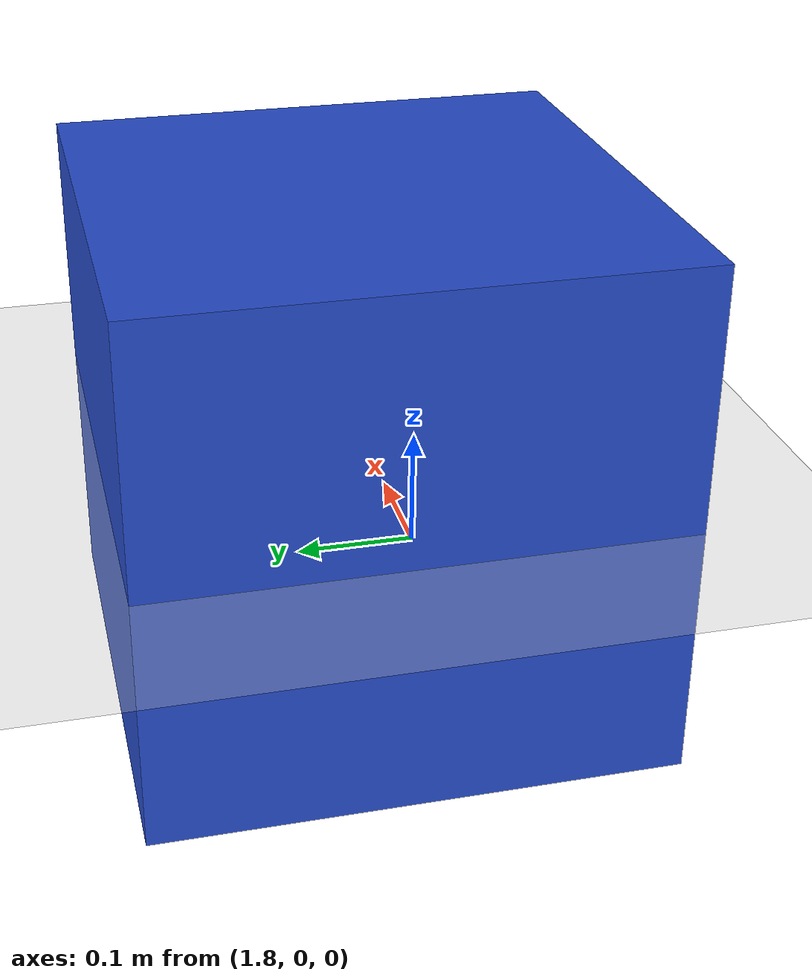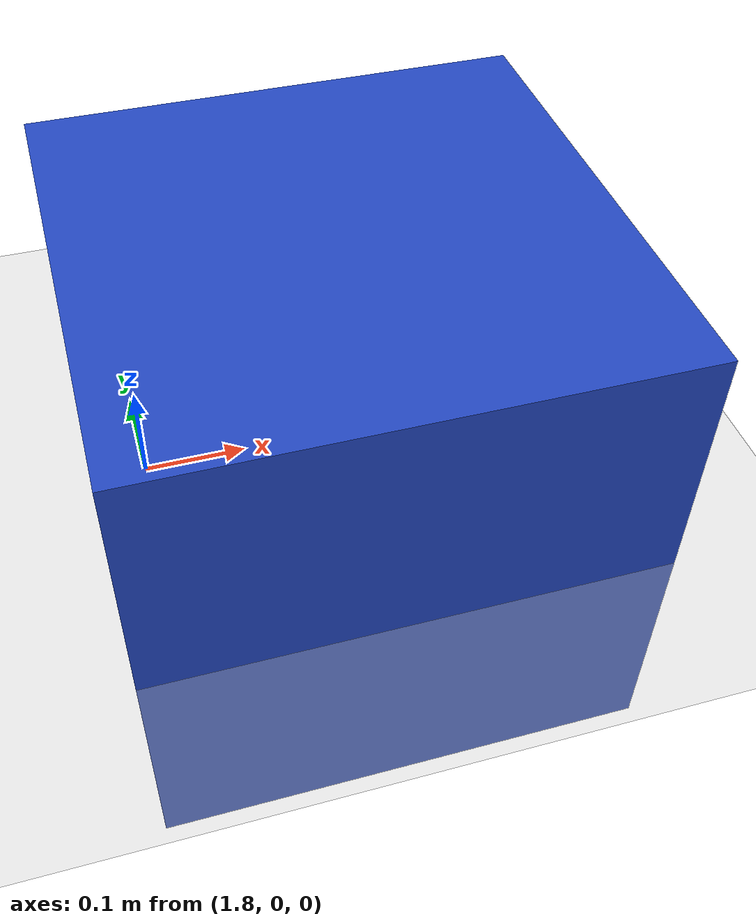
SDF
<?xml version="1.0" ?>

<sdf version="1.5">
	<world name="default">
		<!-- A global light source -->
		<include>
			<uri>model://sun</uri>
		</include>

		<!-- A ground plane -->
		<include>
			<uri>model://ground_plane</uri>
		</include>

		<model name='Objeto_alvo'>
			<pose> 2 0 0 0 0 0 </pose>
			<link name='link_do_alvo'>
			   <visual name='visual_do_alvo'>
					<geometry>
						<box>
						  <size>0.5 0.5 0.5</size>
						</box>
					</geometry>
					<material>
					   <script>
				         <uri>file://media/materials/scripts/gazebo.material</uri>
                         <name>Gazebo/Blue</name>
					   </script>
					</material>
				</visual>
				<collision name='colisao_do_alvo'>
					<geometry>
				    	<box>
							<size>0.5 0.5 0.5</size>
				    	</box>
					</geometry>
				</collision>
			</link>
		</model>

	</world>
</sdf>
